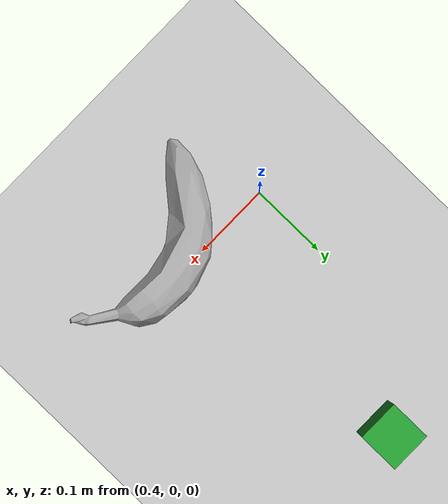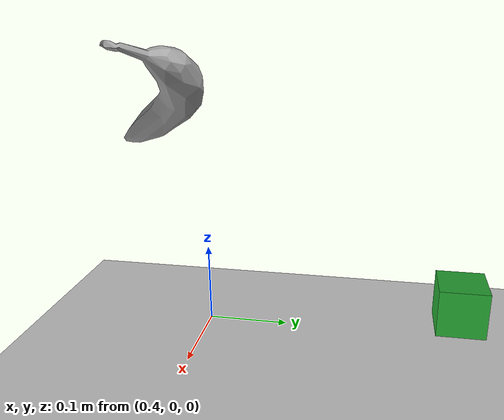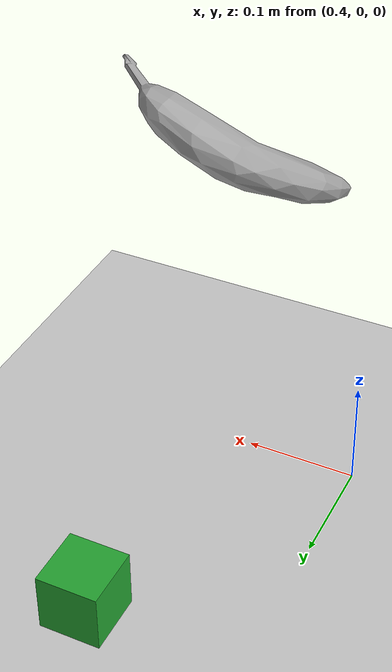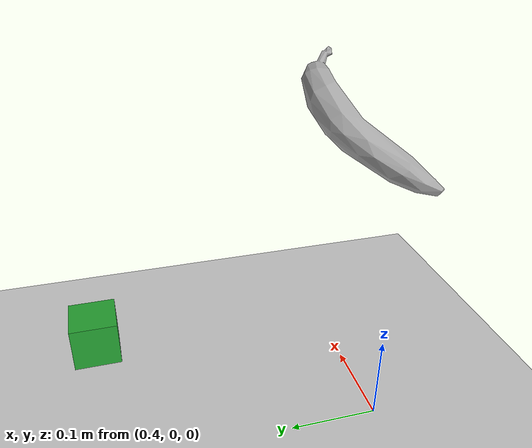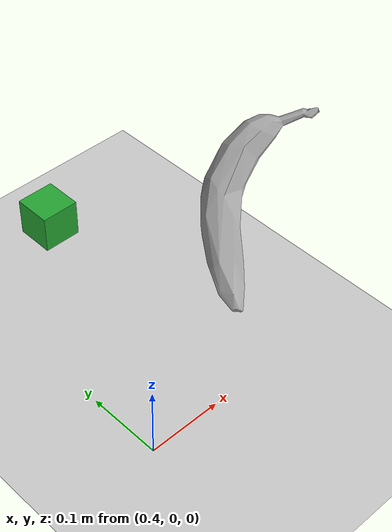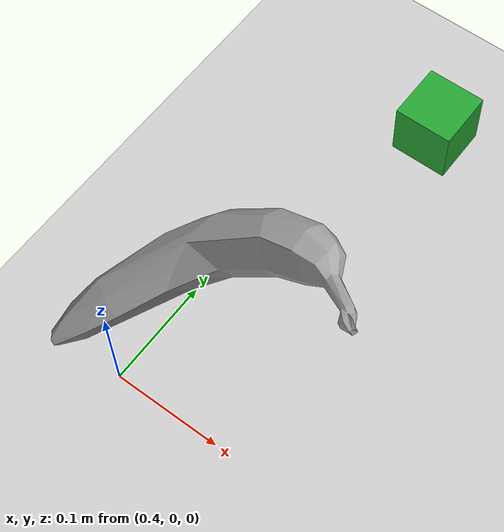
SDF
<?xml version="1.0"?>
<sdf version='1.7'>
  <world name='omtp_world'>

    <light name='sun' type='directional'>
      <cast_shadows>1</cast_shadows>
      <pose>0 0 10 0 -0 0</pose>
      <diffuse>0.8 0.8 0.8 1</diffuse>
      <specular>0.2 0.2 0.2 1</specular>
      <attenuation>
        <range>1000</range>
        <constant>0.9</constant>
        <linear>0.01</linear>
        <quadratic>0.001</quadratic>
      </attenuation>
      <direction>-0.5 0.1 -0.9</direction>
      <spot>
        <inner_angle>0</inner_angle>
        <outer_angle>0</outer_angle>
        <falloff>0</falloff>
      </spot>
    </light>

    <model name='ground_plane'>
      <static>1</static>
      <link name='link'>
        <collision name='collision'>

          <geometry>
            <plane>
              <normal>0 0 1</normal>
              <size>100 100</size>
            </plane>
          </geometry>

          <surface>

            <bounce>
            </bounce>

            <friction>
              <ode>
                <mu>100</mu>
                <mu2>50</mu2>
              </ode>
            </friction>

            <contact>
              <collide_bitmask>65535</collide_bitmask>
              <ode/>
            </contact>

          </surface>

          <max_contacts>10</max_contacts>

        </collision>

        <visual name='visual'>
          <cast_shadows>0</cast_shadows>
          <geometry>
            <plane>
              <normal>0 0 1</normal>
              <size>100 100</size>
            </plane>
          </geometry>
          <material>
            <script>
              <uri>file://media/materials/scripts/gazebo.material</uri>
              <name>Gazebo/Grey</name>
            </script>
          </material>
        </visual>
        <self_collide>0</self_collide>
        <enable_wind>0</enable_wind>
        <kinematic>0</kinematic>
      </link>
    </model>

    <physics type='ode'>
      <gravity>0.000000 0.000000 -9.810000</gravity>
      <max_step_size>0.001</max_step_size>
      <real_time_factor>1</real_time_factor>
      <real_time_update_rate>1000</real_time_update_rate>
    </physics>

    <scene>
      <ambient>0.4 0.4 0.4 1</ambient>
      <background>0.7 0.7 0.7 1</background>
      <shadows>1</shadows>
    </scene>

    <!-- Box -->
    <model name='box_01'>
      <pose>0.5 0.3 0.10 0 0 0</pose>
      <link name='link'>
        <inertial>
          <mass>0.1</mass>
          <inertia>
            <ixx>0.00004166667</ixx>
            <ixy>0</ixy>
            <ixz>0</ixz>
            <iyy>0.00004166667</iyy>
            <iyz>0</iyz>
            <izz>0.00004166667</izz>
          </inertia>
          <pose>0 0 0 0 -0 0</pose>
        </inertial>

        <collision name='collision'>

          <geometry>
            <box>
              <size>0.05 0.05 0.05</size>
            </box>
          </geometry>

          <max_contacts>10</max_contacts>

          <surface>

            <contact>
              <ode>
                <max_vel>5.0</max_vel>
                <min_depth>0.001</min_depth>                <!-- meter -->
                <kp>10000</kp>                <!-- Dynamically 'stiffness'-equivalent coefficient for contact joints -->
                <kd>0</kd>                <!-- Dynamically 'damping'-equivalent coefficient for contact joints -->
              </ode>
            </contact>

            <bounce>
              <restitution_coefficient>0.5</restitution_coefficient>              <!-- "max_vel" must be higher than 0.0 -->
              <threshold>0.01</threshold>
            </bounce>

            <friction>
              <ode>
                <mu>0.95</mu>
                <mu2>0.95</mu2>
              </ode>
            </friction>

          </surface>

        </collision>

        <visual name='visual'>
          <geometry>
            <box>
              <size>0.05 0.05 0.05</size>
            </box>
          </geometry>
          <material>
            <script>
              <name>Gazebo/Green</name>
              <uri>file://media/materials/scripts/gazebo.material</uri>
            </script>
          </material>
        </visual>
        <self_collide>0</self_collide>
        <enable_wind>0</enable_wind>
        <kinematic>0</kinematic>
      </link>
    </model>

    <!-- Banana -->
    <include>
      <uri>model://banana</uri>
      <pose> 0.5  0.0  0.2 0 0 0</pose>
    </include>

    <gui fullscreen='0'>
      <camera name='user_camera'>
        <pose>0.85 -1.25 1.1 0 0.4 2.2</pose>
        <view_controller>orbit</view_controller>
        <projection_type>perspective</projection_type>
      </camera>
    </gui>

    <!-- Logical camera -->

  </world>
</sdf>

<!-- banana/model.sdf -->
<sdf version="1.5">
	<model name="OBJECT">
		<link name="Obj_3">
			<pose>0 0 0.1 2.2 -0.296705961227417 0.01745329052209854</pose>
			<inertial>
				<mass>0.8622732758522034</mass>
				<pose>0.03477764129638672 0.0029336530715227127 0.01468808762729168 2.1619239021219983e-07 1.229939812219527e-07 -1.3813895805014909e-07</pose>
				<inertia>
					<ixx>0.010104811936616898</ixx>
					<ixy>0.0</ixy>
					<ixz>0.0</ixz>
					<iyy>0.02979417145252228</iyy>
					<iyz>0.0</iyz>
					<izz>0.022718265652656555</izz>
				</inertia>
			</inertial>
			<collision name="VIS_Obj_3_Banana_Coll">
				<pose>-0.18325240910053253 -0.042692720890045166 -0.0038590345066040754 3.054346677799913e-07 5.162897664945376e-08 -1.8141007274152798e-07</pose>
				<geometry>
					<mesh>
						<uri>model://banana/meshes/collisions/COL_Obj_3_Banana_Coll.dae</uri>
						<scale>0.11999999731779099 0.11999999731779099 0.11999999731779099</scale>
					</mesh>
				</geometry>
			</collision>
			<visual name="VIS_Obj_3_Banana">
				<pose>-0.18325240910053253 -0.042692720890045166 -0.0038590345066040754 3.054346677799913e-07 5.162897664945376e-08 -1.8141007274152798e-07</pose>
				<geometry>
					<mesh>
						<uri>model://banana/meshes/visual/VIS_Obj_3_Banana.dae</uri>
						<scale>0.11999999731779099 0.11999999731779099 0.11999999731779099</scale>
					</mesh>
				</geometry>
			</visual>
		</link>
	</model>
</sdf>
